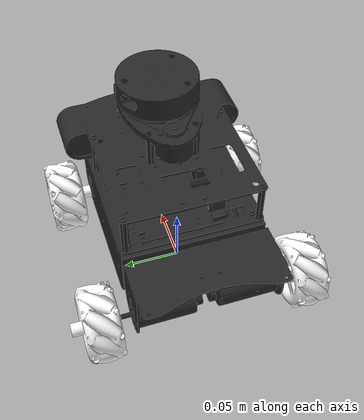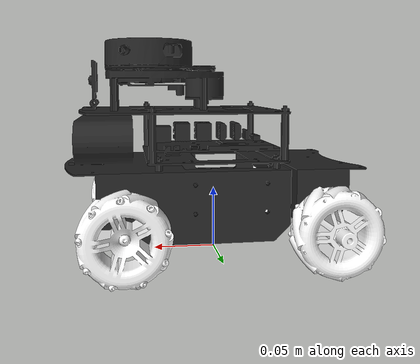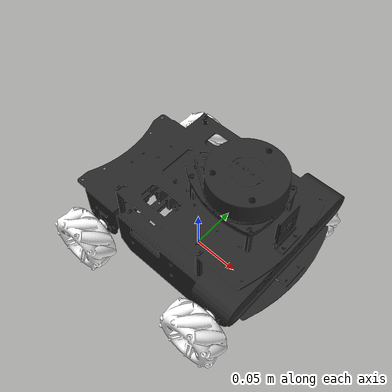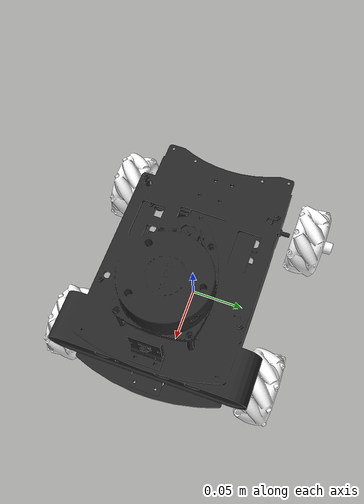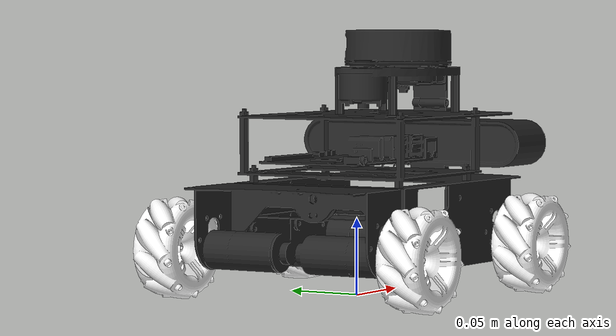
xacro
<?xml version="1.0" encoding="utf-8"?>

<robot name="DIODE_robot" xmlns:xacro="http://ros.org/wiki/xacro">

  <xacro:arg name="robot_name" default=""/>
  <xacro:include filename="$(find ua_simulator)/urdf/DIODE_robot.gazebo.xacro" />

  <link name="$(arg robot_name)/base_footprint"/>
  <joint name="base_joint" type="fixed">
    <parent link="$(arg robot_name)/base_footprint"/>
    <child link="$(arg robot_name)/base_link"/>
    <origin xyz="0.0 0.0 0.0325" rpy="0 0 0"/>
  </joint>

  <link
    name="$(arg robot_name)/base_link">
    <visual>
      <origin
        xyz="0 0 0"
        rpy="0 0 0" />
      <geometry>
        <mesh
          filename="package://ua_simulator/meshes/base_link.STL" />
      </geometry>
      <material
        name="">
        <color
          rgba="0.14902 0.14902 0.14902 1" />
      </material>
    </visual>
    <collision>
      <origin
        xyz="0 0 0"
        rpy="0 0 0" />
      <geometry>
        <mesh
          filename="package://ua_simulator/meshes/base_link.STL" />
      </geometry>
    </collision>
  </link>

  <!-- four wheel -->
  <xacro:macro name="wheel" params="prefix *joint_origin *joint_axis">
    <link
      name="$(arg robot_name)/${prefix}_wheel_link">
      <inertial>
      <origin
        xyz="5.2978E-08 -1.9013E-07 -0.0015791"
        rpy="0 0 0" />
      <mass
        value="0.062971" />
      <inertia
        ixx="1.2204E-05"
        ixy="-1.4876E-10"
        ixz="9.6671E-11"
        iyy="1.2204E-05"
        iyz="-7.8703E-11"
        izz="1.6521E-05" />
      </inertial>
      <visual>
      <origin
        xyz="0 0 0"
        rpy="0 0 0" />
      <geometry>
        <mesh
        filename="package://ua_simulator/meshes/${prefix}_wheel_link.STL" />
      </geometry>
      <material
        name="">
        <color
        rgba="1 1 1 1" />
      </material>
      </visual>
      <collision>
      <origin
        xyz="0 0 0"
        rpy="0 0 0" />
      <geometry>
        <mesh
        filename="package://ua_simulator/meshes/${prefix}_wheel_link.STL" />
      </geometry>
      </collision>
    </link>
    <joint
      name="${prefix}_wheel_joint"
      type="fixed">
      <xacro:insert_block name="joint_origin"/>
      <parent
      link="$(arg robot_name)/base_link" />
      <child
      link="$(arg robot_name)/${prefix}_wheel_link" />
      <xacro:insert_block name="joint_axis"/>
    </joint>
  </xacro:macro>

  <xacro:wheel prefix="front_left">
    <origin
      xyz="0.0746 0.089266 0"
      rpy="-1.5708 0 0" />
    <axis
      xyz="0 0 1" />
  </xacro:wheel>
  <xacro:wheel prefix="front_right">
    <origin
      xyz="0.0746 -0.089266 0"
      rpy="-1.5708 0 0" />
    <axis
      xyz="0 0 1" />
  </xacro:wheel>
  <xacro:wheel prefix="back_left">
    <origin
      xyz="-0.0746 0.089266 0"
      rpy="-1.5708 0 0" />
    <axis
      xyz="0 0 1" />
  </xacro:wheel>
  <xacro:wheel prefix="back_right">
    <origin
      xyz="-0.0746 -0.089266 0"
      rpy="-1.5708 0 0" />
    <axis
      xyz="0 0 1" />
  </xacro:wheel>

  <!-- depth camera -->
  <link name="$(arg robot_name)/camera_link"/>
  <joint
    name="ir_camera_joint"
    type="fixed">
    <origin
      xyz="0.10485 0.0375 0.064184"
      rpy="0 0 0" />
    <parent
      link="$(arg robot_name)/base_link" />
    <child
      link="$(arg robot_name)/camera_link" />
    <axis
      xyz="0 0 0" />
  </joint>

  <!-- rgb camera -->
  <link name="$(arg robot_name)/base_camera_link"/>
  <joint
    name="base_camera_joint"
    type="fixed">
    <origin
      xyz="0.099 -0.0001 0.1077"
      rpy="0 0 0" />
    <parent
      link="$(arg robot_name)/base_link" />
    <child
      link="$(arg robot_name)/base_camera_link" />
    <axis
      xyz="0 0 0" />
  </joint>

  <!-- laser sensor -->
  <link name="$(arg robot_name)/base_laser_link"/>
  <joint
    name="laser_joint"
    type="fixed">
    <origin
      xyz="0.053735 -0.0017816 0.12907"
      rpy="0 0 3.1416" />
    <parent
      link="$(arg robot_name)/base_link" />
    <child
      link="$(arg robot_name)/base_laser_link" />
    <axis
      xyz="0 0 0" />
  </joint>

  <!-- inertia sensor -->
  <link name="$(arg robot_name)/imu"/>
  <joint
    name="imu_joint"
    type="fixed">
    <origin
      xyz="0.0040573 -3.5865E-05 0.0195"
      rpy="0 0 0" />
    <parent
      link="$(arg robot_name)/base_link" />
    <child
      link="$(arg robot_name)/imu" />
    <axis
      xyz="0 0 0" />
  </joint>

</robot>
